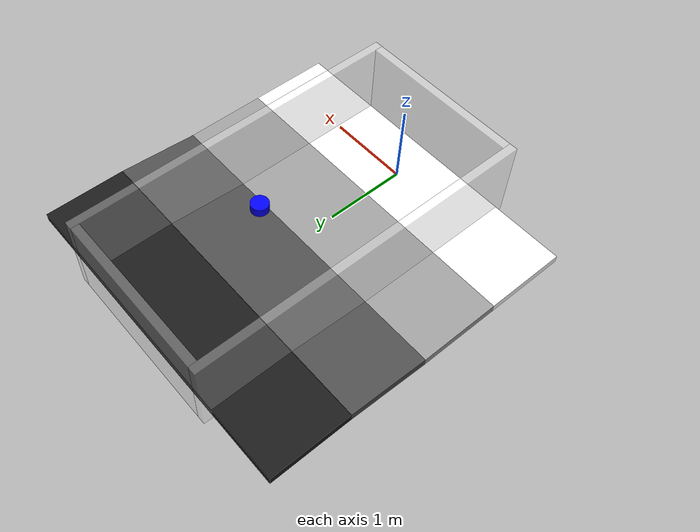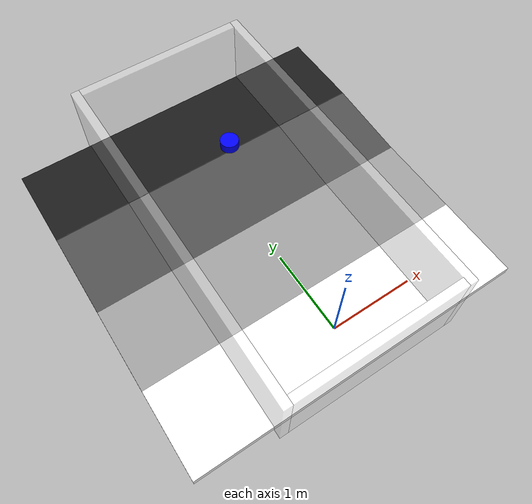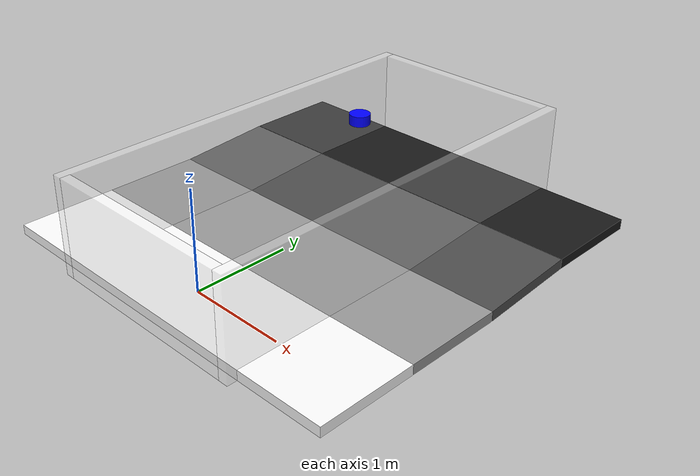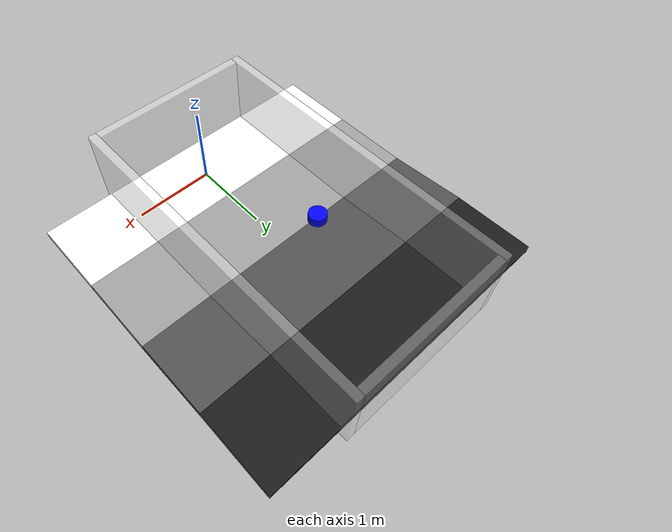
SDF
<?xml version="1.0" ?>
<sdf version="1.9">
	<world name="arena">
		<scene>
			<grid>0</grid>
		</scene>
		<gazebo>
			<plugin file_name="libignition-gazebo-contact-system.so" name="ignition::gazebo::systems::Contact"/>
		</gazebo>
		<gazebo>
			<plugin file_name="libignition-gazebo-sensors-system.so" name="ignition::gazebo::systems::Sensors">
				<render_engine>ogre</render_engine>
			</plugin>
		</gazebo>
		<include>
			<uri>ground.sdf</uri>
		</include>
		<include>
			<uri>walls.sdf</uri>
		</include>

		<!-- TODO this needs to be created as python code-->
		<model name="object">
			<link name="link_object">
				<pose>0 2 1 0 0 0</pose>
				<visual name="visual_object">
					<geometry>
						<cylinder>
							<radius>0.1</radius>
							<length>0.1</length>
						</cylinder>
					</geometry>
					<material>
						<diffuse>0 0 1 1</diffuse>
					</material>
				</visual>

				<collision name="collision_object">
					<geometry>
						<cylinder>
							<radius>0.1</radius>
							<length>0.1</length>
						</cylinder>
					</geometry>
				</collision>

			</link>
		</model>

	</world>
</sdf>

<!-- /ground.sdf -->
<sdf version="1.9">
	<model name="ground">
		<static>true</static>
		<link name="link_lower_area">
			<pose>0 0 0 0 0 0</pose>
			<visual name="nest_area">
				<pose>0 0 0 0 0 0</pose>
				<geometry>
					<box>
						<size>4.0 1.0 0.1</size>
					</box>
				</geometry>
				<material>
					<diffuse>1 1 1 1</diffuse>
				</material>
			</visual>
			<visual name="cache_area">
				<pose>0 1.0 0 0 0 0</pose>
				<geometry>
					<box>
						<size>4.0 1.0 0.1</size>
					</box>
				</geometry>
				<material>
					<diffuse>0.6 0.6 0.6 1</diffuse>
				</material>
			</visual>
			<collision name="collision_lower_area">
				<pose>0 0.5 0 0 0 0</pose>
				<geometry>
					<box>
						<size>4.0 2.0 0.1</size>
					</box>
				</geometry>
			</collision>
		</link>
		<link name="link_slope">
			<pose relative_to="joint_cache_slope">0 0.5 0 0 0 0</pose>
			<visual name="visual_slope">
				<geometry>
					<box>
						<size>4.0 1.0 0.1</size>
					</box>
				</geometry>
				<material>
					<diffuse>0.3 0.3 0.3 1</diffuse>
				</material>
			</visual>
			<collision name="collision_slope">
				<geometry>
					<box>
						<size>4.0 1.0 0.1</size>
					</box>
				</geometry>
			</collision>
		</link>
		<link name="link_source_area">
			<pose relative_to="joint_slope_source">0 0.5 0 0 0 0</pose>
			<visual name="visual_source_area">
				<geometry>
					<box>
						<size>4.0 1.0 0.1</size>
					</box>
				</geometry>
				<material>
					<diffuse>0.1 0.1 0.1 1</diffuse>
				</material>
			</visual>
			<collision name="collision_source_area">
				<geometry>
					<box>
						<size>4.0 1.0 0.1</size>
					</box>
				</geometry>
			</collision>
		</link>
		<joint name="joint_cache_slope" type="fixed">
			<parent>link_lower_area</parent>
			<child>link_slope</child>
			<pose relative_to="link_lower_area">0 1.5 0 0.07 0  0</pose>
			<axis>
				<xyz>1 0 0</xyz>
			</axis>
		</joint>
		<joint name="joint_slope_source" type="fixed">
			<parent>link_slope</parent>
			<child>link_source_area</child>
			<pose relative_to="link_slope">0 0.5 0 -0.07 0 0</pose>
			<axis>
				<xyz>1 0 0</xyz>
			</axis>
		</joint>
	</model>
</sdf>

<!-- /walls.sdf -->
<sdf version="1.9">
	<model name="walls">
		<static>true</static>
		<link name="link_wall_nest">
			<pose>0 -0.55 0.45 0 0 0</pose>
			<visual name="visual_nest_wall">
				<geometry>
					<box>
						<size>2.0 0.1 1</size>
					</box>
				</geometry>
				<material>
					<diffuse>1 1 1 0.3</diffuse>
				</material>
			</visual>
			<collision name="collision_nest_wall">
				<geometry>
					<box>
						<size>2.0 0.1 1</size>
					</box>
				</geometry>
			</collision>
		</link>
		<link name="link_wall_source">
			<pose relative_to="link_wall_nest">0 4.097551000253279 0 0 0 0</pose>
			<visual name="visual_source_wall">
				<geometry>
					<box>
						<size>2.0 0.1 1</size>
					</box>
				</geometry>
				<material>
					<diffuse>1 1 1 0.3</diffuse>
				</material>
			</visual>
			<collision name="collision_source_wall">
				<geometry>
					<box>
						<size>2.0 0.1 1</size>
					</box>
				</geometry>
			</collision>
		</link>
		<link name="link_edge_wall1">
			<pose relative_to="link_wall_nest">1.05 2.0487755001266397 0 0 0 1.5707963267948966</pose>
			<visual name="visual_edge_wall1">
				<geometry>
					<box>
						<size>4.19755100025328 0.1 1</size>
					</box>
				</geometry>
				<material>
					<diffuse>1 1 1 0.3</diffuse>
				</material>
			</visual>
			<collision name="collision_edge_wall1">
				<geometry>
					<box>
						<size>4.19755100025328 0.1 1</size>
					</box>
				</geometry>
			</collision>
		</link>
		<link name="link_edge_wall2">
			<pose relative_to="link_edge_wall1">0 2.0999999999999996 0 0 0 0</pose>
			<visual name="visual_edge_wall2">
				<geometry>
					<box>
						<size>4.19755100025328 0.1 1</size>
					</box>
				</geometry>
				<material>
					<diffuse>1 1 1 0.3</diffuse>
				</material>
			</visual>
			<collision name="collision_edge_wall2">
				<geometry>
					<box>
						<size>4.19755100025328 0.1 1</size>
					</box>
				</geometry>
			</collision>
		</link>
	</model>
</sdf>
